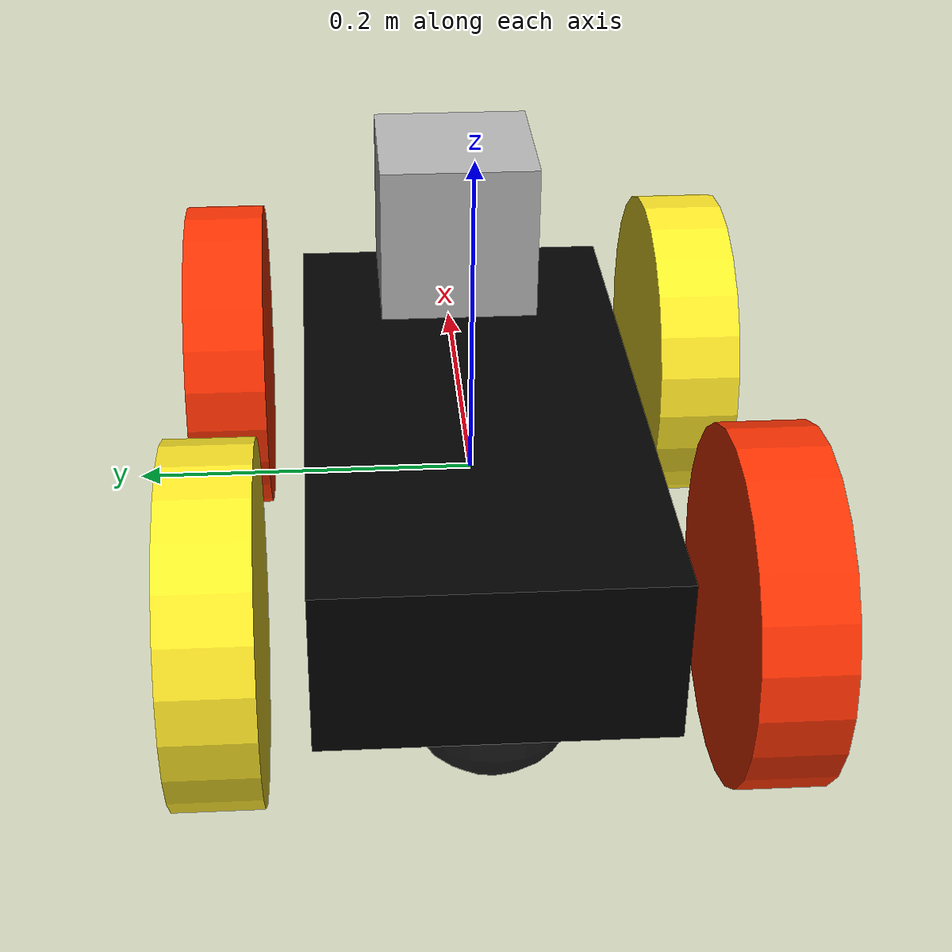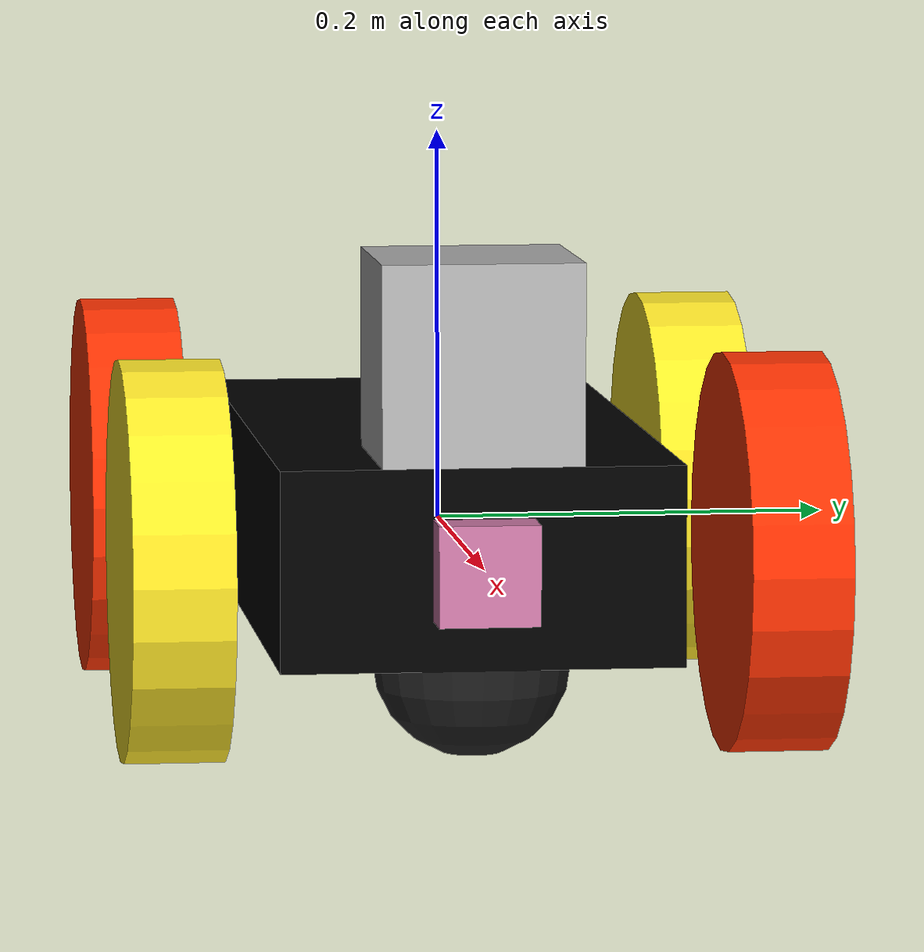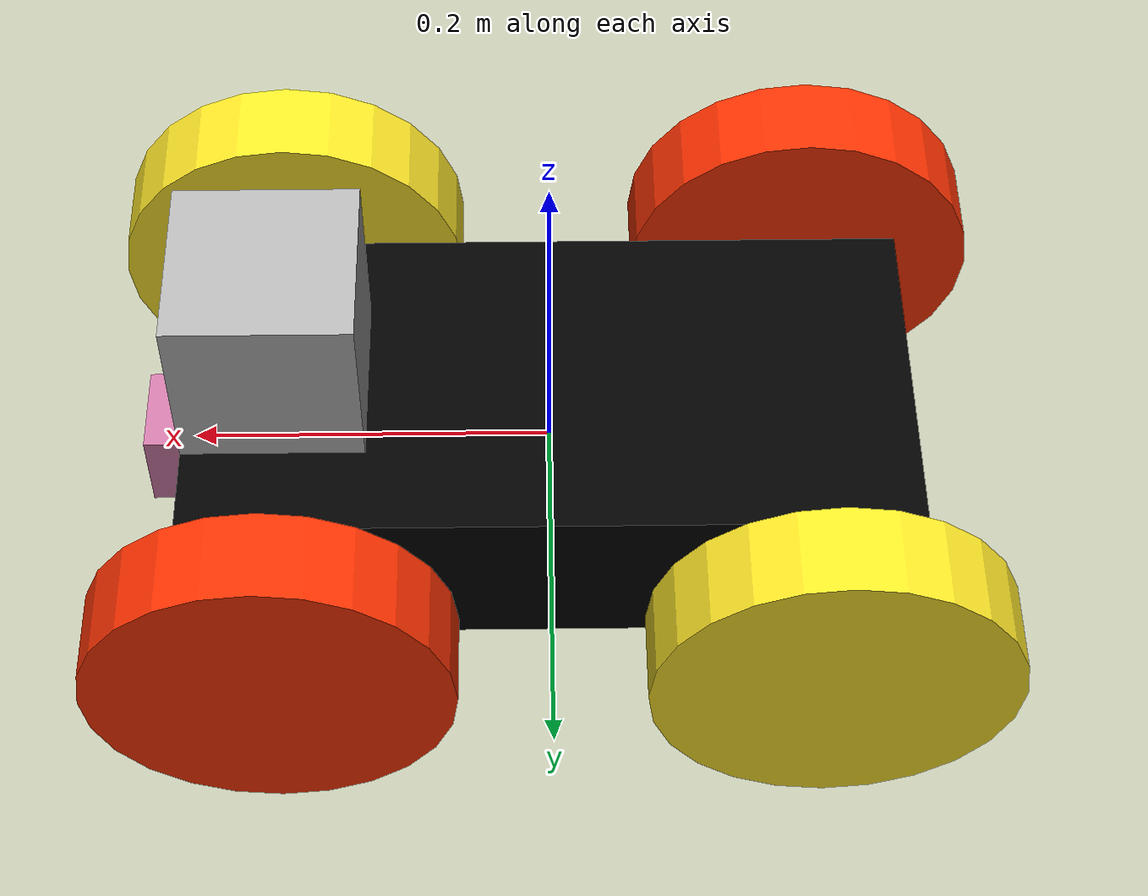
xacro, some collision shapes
<?xml version='1.0'?>

<robot name="my_robot" xmlns:xacro="http://www.ros.org/wiki/xacro">

  <link name="robot_footprint"></link>
  <xacro:include filename="$(find my_robot)/urdf/my_robot.gazebo"/>

  <joint name="robot_footprint_joint" type="fixed">
    <origin xyz="0 0 0" rpy="0 0 0" />
    <parent link="robot_footprint" />
    <child link="chassis" />
  </joint>

  <link name='chassis'>
    <pose>0 0 0.1 0 0 0</pose>

    <inertial>
      <mass value="15.0"/>
      <origin xyz="0.0 0 0" rpy=" 0 0 0"/>
      <inertia
          ixx="0.1" ixy="0" ixz="0"
          iyy="0.1" iyz="0"
          izz="0.1"
      />
    </inertial>

    <collision name='collision'>
      <origin xyz="0 0 0" rpy=" 0 0 0"/>
      <geometry>
        <box size=".4 .2 .1"/>
      </geometry>
    </collision>

    <visual name='chassis_visual'>
      <origin xyz="0 0 0" rpy=" 0 0 0"/>
      <geometry>
        <box size=".4 .2 .1"/>
      </geometry>
      <material name="Black">
        <color rgba="0 0 0 1"/>
      </material>
    </visual>

    <collision name='back_caster_collision'>
      <origin xyz="-0.15 0 -0.05" rpy=" 0 0 0"/>
      <geometry>
        <sphere radius="0.049"/>
      </geometry>
    </collision>

    <visual name='back_caster_visual'>
      <origin xyz="-0.15 0 -0.05" rpy=" 0 0 0"/>
      <geometry>
        <sphere radius="0.05"/>
      </geometry>
    </visual>

    <collision name='front_caster_collision'>
      <origin xyz="0.15 0 -0.05" rpy=" 0 0 0"/>
      <geometry>
        <sphere radius="0.049"/>
      </geometry>
    </collision>

    <visual name='front_caster_visual'>
      <origin xyz="0.15 0 -0.05" rpy=" 0 0 0"/>
      <geometry>
        <sphere radius="0.05"/>
      </geometry>
    </visual>

  </link>

  <!--right wheel-->
  <link name='right_wheel_front'>
    <inertial>
      <mass value="5.0"/>
      <origin xyz="0.0 0 0" rpy=" 0 1.5707 1.5707"/>
      <inertia ixx="0.1" ixy="0" ixz="0" iyy="0.1" iyz="0" izz="0.1"/>
    </inertial>

    <visual name='right_wheel_front_visual'>
      <origin xyz="0 0 0" rpy=" 0 1.5707 1.5707"/>
      <geometry>
        <cylinder length=".05" radius=".1"/>
      </geometry>
      <material name="Gold">
        <color rgba="254 231 40 1"/>
      </material>
    </visual>

    <collision name='right_wheel_collision_front'>
      <origin xyz="0 0 0" rpy=" 0 1.5707 1.5707"/>
      <geometry>
        <cylinder length=".05" radius=".1"/>
      </geometry>
    </collision>

  </link>

  <joint type="continuous" name="right_wheel_hinge_front">
    <origin xyz="0.15 -0.15 0" rpy="0 0 0"/>
    <child link="right_wheel_front"/>
    <parent link="chassis"/>
    <axis xyz="0 1 0" rpy="0 0 0"/>
    <limit effort="10000" velocity="1000"/>
    <dynamics damping="1.0" friction="1.0"/>
  </joint>

  <!--left wheel-->
  <link name='left_wheel_front'>
    <inertial>
      <mass value="5.0"/>
      <origin xyz="0.0 0 0" rpy=" 0 1.5707 1.5707"/>
      <inertia ixx="0.1" ixy="0" ixz="0" iyy="0.1" iyz="0" izz="0.1"/>
    </inertial>

    <visual name='left_wheel_front_visual'>
      <origin xyz="0 0 0" rpy=" 0 1.5707 1.5707"/>
      <geometry>
        <cylinder length=".05" radius=".1"/>
      </geometry>
      <material name="cardnial">
        <color rgba="254 50 2 1"/>
      </material>
    </visual>

    <collision name='left_wheel_collision_front'>
      <origin xyz="0 0 0" rpy=" 0 1.5707 1.5707"/>
      <geometry>
        <cylinder length=".05" radius=".1"/>
      </geometry>
    </collision>

  </link>

  <joint type="continuous" name="left_wheel_hinge_front">
    <origin xyz="0.15 0.15 0" rpy="0 0 0"/>
    <child link="left_wheel_front"/>
    <parent link="chassis"/>
    <axis xyz="0 1 0" rpy="0 0 0"/>
    <limit effort="10000" velocity="1000"/>
    <dynamics damping="1.0" friction="1.0"/>
  </joint>

<link name='right_wheel_back'>
    <inertial>
      <mass value="5.0"/>
      <origin xyz="0.0 0 0" rpy=" 0 1.5707 1.5707"/>
      <inertia ixx="0.1" ixy="0" ixz="0" iyy="0.1" iyz="0" izz="0.1"/>
    </inertial>

    <visual name='right_wheel_back_visual'>
      <origin xyz="0 0 0" rpy=" 0 1.5707 1.5707"/>
      <geometry>
        <cylinder length=".05" radius=".1"/>
      </geometry>
      <material name="cardinal">
        <color rgba="254 50 2 1"/>
      </material>
    </visual>

    <collision name='right_wheel_collision_back'>
      <origin xyz="0 0 0" rpy=" 0 1.5707 1.5707"/>
      <geometry>
        <cylinder length=".05" radius=".1"/>
      </geometry>
    </collision>

  </link>

  <joint type="continuous" name="right_wheel_hinge_back">
    <origin xyz="-0.15 -0.15 0" rpy="0 0 0"/>
    <child link="right_wheel_back"/>
    <parent link="chassis"/>
    <axis xyz="0 1 0" rpy="0 0 0"/>
    <limit effort="10000" velocity="1000"/>
    <dynamics damping="1.0" friction="1.0"/>
  </joint>

  <!--left wheel-->
  <link name='left_wheel_back'>
    <inertial>
      <mass value="5.0"/>
      <origin xyz="0.0 0 0" rpy=" 0 1.5707 1.5707"/>
      <inertia ixx="0.1" ixy="0" ixz="0" iyy="0.1" iyz="0" izz="0.1"/>
    </inertial>

    <visual name='left_wheel_back_visual'>
      <origin xyz="0 0 0" rpy=" 0 1.5707 1.5707"/>
      <geometry>
        <cylinder length=".05" radius=".1"/>
      </geometry>
      <material name="Gold">
        <color rgba="254 231 40 1"/>
      </material>
    </visual>

    <collision name='left_wheel_collision_back'>
      <origin xyz="0 0 0" rpy=" 0 1.5707 1.5707"/>
      <geometry>
        <cylinder length=".05" radius=".1"/>
      </geometry>
    </collision>

  </link>

  <joint type="continuous" name="left_wheel_hinge_back">
    <origin xyz="-0.15 0.15 0" rpy="0 0 0"/>
    <child link="left_wheel_back"/>
    <parent link="chassis"/>
    <axis xyz="0 1 0" rpy="0 0 0"/>
    <limit effort="10000" velocity="1000"/>
    <dynamics damping="1.0" friction="1.0"/>
  </joint>

  <gazebo reference="chassis">
    <material>Gazebo/Black</material>
  </gazebo>

  <gazebo reference="left_wheel_front">
    <material>Gazebo/Red</material>
  </gazebo>

  <gazebo reference="left_wheel_back">
    <material>Gazebo/Gold</material>
  </gazebo>

  <gazebo reference="right_wheel_front">
    <material>Gazebo/Gold</material>
  </gazebo>

  <gazebo reference="right_wheel_back">
    <material>Gazebo/Red</material>
  </gazebo>

  <link name='camera'>
    <inertial>
      <mass value=".1"/>
      <origin xyz="0.0 0 0" rpy=" 0 0 0"/>
      <box_inertia m="0.1" x="0.05" y="0.05" z="0.05"/>
      <inertia ixx="1e-6" ixy="0" ixz="0" iyy="1e-6" iyz="0" izz="1e-6"/>
    </inertial>

    <visual name='camera_visual'>
      <origin xyz="0 0 0" rpy=" 0 0 0"/>
      <geometry>
        <box size=".05 .05 .05"/>
      </geometry>
    </visual>

    <collision name='camera_collision'>
      <origin xyz="0 0 0" rpy=" 0 0 0"/>
      <geometry>
        <box size=".05 .05 .05"/>
      </geometry>
    </collision>

  </link>

  <joint type="fixed" name="camera_joint">
    <origin xyz="0.2 0 0" rpy="0 0 0"/>
    <child link="camera"/>
    <parent link="chassis"/>
    <axis xyz="0 1 0" rpy="0 0 0"/>
  </joint>

  <link name='hokuyo'>
    <inertial>
      <mass value="1e-5"/>
      <origin xyz="0.0 0 0" rpy=" 0 0 0"/>
      <inertia ixx="1e-6" ixy="0" ixz="0" iyy="1e-6" iyz="0" izz="1e-6"/>
    </inertial>

    <visual name='hokuyo_visual'>
      <origin xyz="0 0 0" rpy=" 0 0 0"/>
      <geometry>
        <mesh filename="package://my_robot/meshes/hokuyo.dae"/>
      </geometry>
    </visual>

    <collision name='hokuyo_collision'>
      <origin xyz="0 0 0" rpy=" 0 0 0"/>
      <geometry>
        <box size=".1 .1 .1"/>
      </geometry>
    </collision>

  </link>

  <joint type="fixed" name="hokuyo_joint">
    <origin xyz="0.15 0 .1" rpy="0 0 0"/>
    <child link="hokuyo"/>
    <parent link="chassis"/>
    <axis xyz="0 1 0" rpy="0 0 0"/>
  </joint>
</robot>
